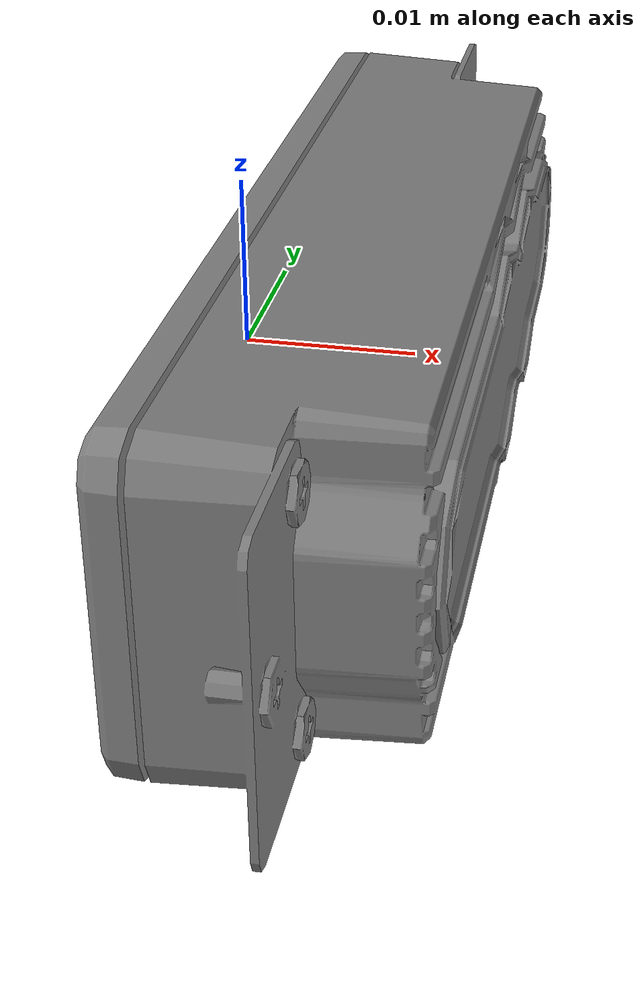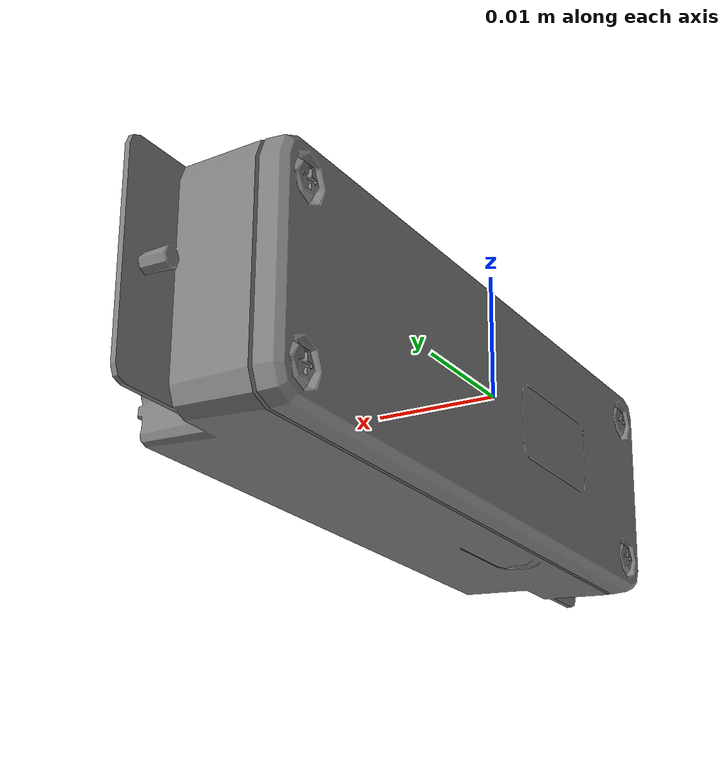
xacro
<?xml version="1.0"?>
<robot name="berxel_camera" xmlns:xacro="http://ros.org/wiki/xacro">
  <xacro:include filename="$(find berxel_description)/urdf/_iHawk100_no_heat_sink.urdf.xacro" />

  <link name="base_link" />
  <xacro:berxel_iHawk_100 parent="base_link">
    <origin xyz="0 0 0" rpy="0 0 0"/>
  </xacro:berxel_iHawk_100>
</robot>

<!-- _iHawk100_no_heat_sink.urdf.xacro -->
<robot name="berxel_iHawk_100" xmlns:xacro="http://ros.org/wiki/xacro">

  <xacro:macro name="berxel_iHawk_100" params="parent *origin  name:=camera  use_nominal_extrinsics:=false add_plug:=false use_mesh:=true">
    <xacro:property name="M_PI" value="3.1415926535897931" />

    <joint name="${name}_joint" type="fixed">
      <xacro:insert_block name="origin" />
      <parent link="${parent}"/>
      <child link="${name}_back_screw_frame" />
    </joint>

    <link name="${name}_back_screw_frame"/>

    <joint name="${name}_link_joint" type="fixed">
      <origin xyz="0.0138 0 0" rpy="0 0 0"/>
      <parent link="${name}_back_screw_frame"/>
      <child link="${name}_link" />
    </joint>

    <link name="${name}_link">
      <visual>
        <origin xyz="0 0 0" rpy="3.14 0 1.57"/>
        <geometry>
          <mesh filename="package://berxel_description/meshes/BerxeliHawk100_NoHeatSink.stl" />
        </geometry>
        <material name="aluminum">
          <color rgba="0.5 0.5 0.5 1"/>
        </material>
      </visual>
    </link>

    <joint name="${name}_color_joint" type="fixed">
      <origin xyz="0 0.01 0" rpy="0 0 0"/>
      <parent link="${name}_link"/>
      <child link="${name}_color_frame" />
    </joint>
    <link name="${name}_color_frame"/>

    <joint name="${name}_color_optical_frame" type="fixed">
      <origin xyz="0 0 0" rpy="${-M_PI/2} 0 ${-M_PI/2}" />
      <parent link="${name}_color_frame" />
      <child link="${name}_color_optical_frame" />
    </joint>
    <link name="${name}_color_optical_frame"/>

    <joint name="${name}_depth_joint" type="fixed">
      <origin xyz="0 0.02 0" rpy="0 0 0"/>
      <parent link="${name}_link"/>
      <child link="${name}_depth_frame" />
    </joint>
    <link name="${name}_depth_frame"/>

    <joint name="${name}_depth_optical_frame" type="fixed">
      <origin xyz="0 0 0" rpy="${-M_PI/2} 0 ${-M_PI/2}" />
      <parent link="${name}_depth_frame" />
      <child link="${name}_depth_optical_frame" />
    </joint>
    <link name="${name}_depth_optical_frame"/>

    <joint name="${name}_lite_joint" type="fixed">
      <origin xyz="0 -0.02 0" rpy="0 0 0"/>
      <parent link="${name}_link"/>
      <child link="${name}_lite_frame" />
    </joint>
    <link name="${name}_lite_frame"/>

    <joint name="${name}_lite_optical_frame" type="fixed">
      <origin xyz="0 0 0" rpy="${-M_PI/2} 0 ${-M_PI/2}" />
      <parent link="${name}_lite_frame" />
      <child link="${name}_lite_optical_frame" />
    </joint>
    <link name="${name}_lite_optical_frame"/>

  </xacro:macro>
</robot>
